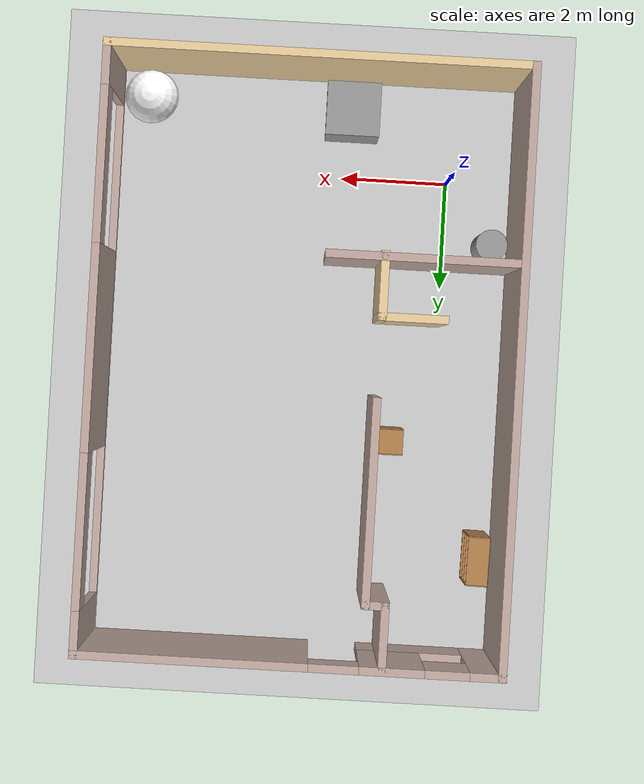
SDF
<sdf version="1.6">
 <world name="default">
  <light name="sun" type="directional">
   <pose>0 0 10 0 -0 0</pose>
   <diffuse>0.8 0.8 0.8 1</diffuse>
   <specular>0.2 0.2 0.2 1</specular>
   <attenuation>
    <range>1000</range>
    <constant>0.9</constant>
    <linear>0.01</linear>
    <quadratic>0.001</quadratic>
   </attenuation>
   <direction>-0.5 0.1 -0.9</direction>
  </light>
  <model name="ground_plane">
   <static>1</static>
   <link name="link">
    <collision name="collision">
     <geometry><plane><normal>0 0 1</normal><size>100 100</size></plane></geometry>
     <surface>
      <contact><collide_bitmask>65535</collide_bitmask></contact>
      <friction><ode><mu>100</mu><mu2>50</mu2></ode></friction>
     </surface>
    </collision>
    <visual name="visual">
     <cast_shadows>0</cast_shadows>
     <geometry><plane><normal>0 0 1</normal><size>100 100</size></plane></geometry>
     <material>
      <script><uri>file://media/materials/scripts/gazebo.material</uri><name>Gazebo/Grey</name></script>
     </material>
    </visual>
   </link>
  </model>
  <gravity>0 0 -9.8</gravity>
  <magnetic_field>6e-06 2.3e-05 -4.2e-05</magnetic_field>
  <atmosphere type="adiabatic"/>
  <physics name="default_physics" default="0" type="ode">
   <max_step_size>0.001</max_step_size>
   <real_time_factor>1</real_time_factor>
   <real_time_update_rate>1000</real_time_update_rate>
  </physics>
  <scene><ambient>0.4 0.4 0.4 1</ambient><background>0.7 0.7 0.7 1</background><shadows>1</shadows></scene>
  <spherical_coordinates>
   <surface_model>EARTH_WGS84</surface_model>
   <latitude_deg>0</latitude_deg>
   <longitude_deg>0</longitude_deg>
   <elevation>0</elevation>
   <heading_deg>0</heading_deg>
  </spherical_coordinates>
  <model name="apt">
   <pose>2.4943 3.50508 0 0 -0 0</pose>
   <link name="Wall_1">
    <pose>0 5.425 0 0 -0 0</pose>
    <visual name="Wall_1_Visual_0">
     <pose>-3.54924 0 1.25 0 -0 0</pose>
     <geometry><box><size>0.65152 0.15 2.5</size></box></geometry>
     <material>
      <script><uri>file://media/materials/scripts/gazebo.material</uri><name>Gazebo/Grey</name></script>
      <ambient>0.760784 0.662745 0.627451 1</ambient>
     </material>
     <meta><layer>0</layer></meta>
    </visual>
    <collision name="Wall_1_Collision_0">
     <geometry><box><size>0.65152 0.15 2.5</size></box></geometry>
     <pose>-3.54924 0 1.25 0 -0 0</pose>
    </collision>
    <visual name="Wall_1_Visual_1">
     <pose>1.76024 0 1.25 0 -0 0</pose>
     <geometry><box><size>4.22952 0.15 2.5</size></box></geometry>
     <material>
      <script><uri>file://media/materials/scripts/gazebo.material</uri><name>Gazebo/Grey</name></script>
      <ambient>0.760784 0.662745 0.627451 1</ambient>
     </material>
     <meta><layer>0</layer></meta>
    </visual>
    <collision name="Wall_1_Collision_1">
     <geometry><box><size>4.22952 0.15 2.5</size></box></geometry>
     <pose>1.76024 0 1.25 0 -0 0</pose>
    </collision>
    <visual name="Wall_1_Visual_2">
     <pose>-2.239 0 0.4 0 -0 0</pose>
     <geometry><box><size>1.96896 0.15 0.8</size></box></geometry>
     <material>
      <script><uri>file://media/materials/scripts/gazebo.material</uri><name>Gazebo/Grey</name></script>
      <ambient>0.760784 0.662745 0.627451 1</ambient>
     </material>
     <meta><layer>0</layer></meta>
    </visual>
    <collision name="Wall_1_Collision_2">
     <geometry><box><size>1.96896 0.15 0.8</size></box></geometry>
     <pose>-2.239 0 0.4 0 -0 0</pose>
    </collision>
    <visual name="Wall_1_Visual_3">
     <pose>-1.839 0 1.65 0 -0 0</pose>
     <geometry><box><size>1.16895 0.15 1.7</size></box></geometry>
     <material>
      <script><uri>file://media/materials/scripts/gazebo.material</uri><name>Gazebo/Grey</name></script>
      <ambient>0.760784 0.662745 0.627451 1</ambient>
     </material>
     <meta><layer>0</layer></meta>
    </visual>
    <collision name="Wall_1_Collision_3">
     <geometry><box><size>1.16895 0.15 1.7</size></box></geometry>
     <pose>-1.839 0 1.65 0 -0 0</pose>
    </collision>
    <visual name="Wall_1_Visual_4">
     <pose>-2.82348 0 2.05 0 -0 0</pose>
     <geometry><box><size>0.8 0.15 0.9</size></box></geometry>
     <material>
      <script><uri>file://media/materials/scripts/gazebo.material</uri><name>Gazebo/Grey</name></script>
      <ambient>0.760784 0.662745 0.627451 1</ambient>
     </material>
     <meta><layer>0</layer></meta>
    </visual>
    <collision name="Wall_1_Collision_4">
     <geometry><box><size>0.8 0.15 0.9</size></box></geometry>
     <pose>-2.82348 0 2.05 0 -0 0</pose>
    </collision>
    <visual name="Wall_1_Visual_5">
     <pose>-0.804525 0 2.25 0 -0 0</pose>
     <geometry><box><size>0.9 0.15 0.5</size></box></geometry>
     <material>
      <script><uri>file://media/materials/scripts/gazebo.material</uri><name>Gazebo/Grey</name></script>
      <ambient>0.760784 0.662745 0.627451 1</ambient>
     </material>
     <meta><layer>0</layer></meta>
    </visual>
    <collision name="Wall_1_Collision_5">
     <geometry><box><size>0.9 0.15 0.5</size></box></geometry>
     <pose>-0.804525 0 2.25 0 -0 0</pose>
    </collision>
   </link>
   <link name="Wall_10">
    <collision name="Wall_10_Collision">
     <geometry><box><size>1.25 0.15 2.5</size></box></geometry>
     <pose>0 0 1.25 0 -0 0</pose>
    </collision>
    <visual name="Wall_10_Visual">
     <pose>0 0 1.25 0 -0 0</pose>
     <geometry><box><size>1.25 0.15 2.5</size></box></geometry>
     <material>
      <script><uri>file://media/materials/scripts/gazebo.material</uri><name>Gazebo/Grey</name></script>
      <ambient>0.760784 0.662745 0.627451 1</ambient>
     </material>
     <meta><layer>0</layer></meta>
    </visual>
    <pose>-1.66105 4.81692 0 0 0 -1.5708</pose>
   </link>
   <link name="Wall_14">
    <collision name="Wall_14_Collision">
     <geometry><box><size>0.5 0.15 2.5</size></box></geometry>
     <pose>0 0 1.25 0 -0 0</pose>
    </collision>
    <visual name="Wall_14_Visual">
     <pose>0 0 1.25 0 -0 0</pose>
     <geometry><box><size>0.5 0.15 2.5</size></box></geometry>
     <material>
      <script><uri>file://media/materials/scripts/gazebo.material</uri><name>Gazebo/Grey</name></script>
      <ambient>0.760784 0.662745 0.627451 1</ambient>
     </material>
     <meta><layer>0</layer></meta>
    </visual>
    <pose>-1.48605 4.26692 0 0 -0 0</pose>
   </link>
   <link name="Wall_15">
    <collision name="Wall_15_Collision">
     <geometry><box><size>3.75 0.15 2.5</size></box></geometry>
     <pose>0 0 1.25 0 -0 0</pose>
    </collision>
    <visual name="Wall_15_Visual">
     <pose>0 0 1.25 0 -0 0</pose>
     <geometry><box><size>3.75 0.15 2.5</size></box></geometry>
     <material>
      <script><uri>file://media/materials/scripts/gazebo.material</uri><name>Gazebo/Grey</name></script>
      <ambient>0.760784 0.662745 0.627451 1</ambient>
     </material>
     <meta><layer>0</layer></meta>
    </visual>
    <pose>-1.31105 2.46692 0 0 0 -1.5708</pose>
   </link>
   <link name="Wall_17">
    <collision name="Wall_17_Collision">
     <geometry><box><size>1.25 0.15 2.5</size></box></geometry>
     <pose>0 0 1.25 0 -0 0</pose>
    </collision>
    <visual name="Wall_17_Visual">
     <pose>0 0 1.25 0 -0 0</pose>
     <geometry><box><size>1.25 0.15 2.5</size></box></geometry>
     <material>
      <script><uri>file://media/materials/scripts/gazebo.material</uri><name>Gazebo/Grey</name></script>
      <ambient>0.921569 0.807843 0.615686 1</ambient>
     </material>
     <meta><layer>0</layer></meta>
    </visual>
    <pose>-1.32456 -1.39414 0 0 -0 1.5708</pose>
   </link>
   <link name="Wall_18">
    <collision name="Wall_18_Collision">
     <geometry><box><size>1.25 0.15 2.5</size></box></geometry>
     <pose>0 0 1.25 0 -0 0</pose>
    </collision>
    <visual name="Wall_18_Visual">
     <pose>0 0 1.25 0 -0 0</pose>
     <geometry><box><size>1.25 0.15 2.5</size></box></geometry>
     <material>
      <script><uri>file://media/materials/scripts/gazebo.material</uri><name>Gazebo/Grey</name></script>
      <ambient>0.921569 0.807843 0.615686 1</ambient>
     </material>
     <meta><layer>0</layer></meta>
    </visual>
    <pose>-1.87456 -0.84414 0 0 -0 3.14159</pose>
   </link>
   <link name="Wall_2">
    <pose>3.8 0 0 0 0 -1.5708</pose>
    <visual name="Wall_2_Visual_0">
     <pose>-5.0781 0 1.25 0 -0 0</pose>
     <geometry><box><size>0.843802 0.15 2.5</size></box></geometry>
     <material>
      <script><uri>file://media/materials/scripts/gazebo.material</uri><name>Gazebo/Grey</name></script>
      <ambient>0.760784 0.662745 0.627451 1</ambient>
     </material>
     <meta><layer>0</layer></meta>
    </visual>
    <collision name="Wall_2_Collision_0">
     <geometry><box><size>0.843802 0.15 2.5</size></box></geometry>
     <pose>-5.0781 0 1.25 0 -0 0</pose>
    </collision>
    <visual name="Wall_2_Visual_1">
     <pose>0.421901 0 0.05 0 -0 0</pose>
     <geometry><box><size>10.1562 0.15 0.1</size></box></geometry>
     <material>
      <script><uri>file://media/materials/scripts/gazebo.material</uri><name>Gazebo/Grey</name></script>
      <ambient>0.760784 0.662745 0.627451 1</ambient>
     </material>
     <meta><layer>0</layer></meta>
    </visual>
    <collision name="Wall_2_Collision_1">
     <geometry><box><size>10.1562 0.15 0.1</size></box></geometry>
     <pose>0.421901 0 0.05 0 -0 0</pose>
    </collision>
    <visual name="Wall_2_Visual_2">
     <pose>0.004121 0 1.3 0 -0 0</pose>
     <geometry><box><size>3.72064 0.15 2.4</size></box></geometry>
     <material>
      <script><uri>file://media/materials/scripts/gazebo.material</uri><name>Gazebo/Grey</name></script>
      <ambient>0.760784 0.662745 0.627451 1</ambient>
     </material>
     <meta><layer>0</layer></meta>
    </visual>
    <collision name="Wall_2_Collision_2">
     <geometry><box><size>3.72064 0.15 2.4</size></box></geometry>
     <pose>0.004121 0 1.3 0 -0 0</pose>
    </collision>
    <visual name="Wall_2_Visual_3">
     <pose>5.08222 0 1.3 0 -0 0</pose>
     <geometry><box><size>0.83556 0.15 2.4</size></box></geometry>
     <material>
      <script><uri>file://media/materials/scripts/gazebo.material</uri><name>Gazebo/Grey</name></script>
      <ambient>0.760784 0.662745 0.627451 1</ambient>
     </material>
     <meta><layer>0</layer></meta>
    </visual>
    <collision name="Wall_2_Collision_3">
     <geometry><box><size>0.83556 0.15 2.4</size></box></geometry>
     <pose>5.08222 0 1.3 0 -0 0</pose>
    </collision>
    <visual name="Wall_2_Visual_4">
     <pose>-3.2562 0 2.2 0 -0 0</pose>
     <geometry><box><size>2.8 0.15 0.6</size></box></geometry>
     <material>
      <script><uri>file://media/materials/scripts/gazebo.material</uri><name>Gazebo/Grey</name></script>
      <ambient>0.760784 0.662745 0.627451 1</ambient>
     </material>
     <meta><layer>0</layer></meta>
    </visual>
    <collision name="Wall_2_Collision_4">
     <geometry><box><size>2.8 0.15 0.6</size></box></geometry>
     <pose>-3.2562 0 2.2 0 -0 0</pose>
    </collision>
    <visual name="Wall_2_Visual_5">
     <pose>3.26444 0 2.2 0 -0 0</pose>
     <geometry><box><size>2.8 0.15 0.6</size></box></geometry>
     <material>
      <script><uri>file://media/materials/scripts/gazebo.material</uri><name>Gazebo/Grey</name></script>
      <ambient>0.760784 0.662745 0.627451 1</ambient>
     </material>
     <meta><layer>0</layer></meta>
    </visual>
    <collision name="Wall_2_Collision_5">
     <geometry><box><size>2.8 0.15 0.6</size></box></geometry>
     <pose>3.26444 0 2.2 0 -0 0</pose>
    </collision>
   </link>
   <link name="Wall_4">
    <collision name="Wall_4_Collision">
     <geometry><box><size>11 0.15 2.5</size></box></geometry>
     <pose>0 0 1.25 0 -0 0</pose>
    </collision>
    <visual name="Wall_4_Visual">
     <pose>0 0 1.25 0 -0 0</pose>
     <geometry><box><size>11 0.15 2.5</size></box></geometry>
     <material>
      <script><uri>file://media/materials/scripts/gazebo.material</uri><name>Gazebo/Grey</name></script>
      <ambient>0.760784 0.662745 0.627451 1</ambient>
     </material>
     <meta><layer>0</layer></meta>
    </visual>
    <pose>-3.8 0 0 0 0 -1.5708</pose>
   </link>
   <link name="Wall_5">
    <collision name="Wall_5_Collision">
     <geometry><box><size>7.75 0.15 2.5</size></box></geometry>
     <pose>0 0 1.25 0 -0 0</pose>
    </collision>
    <visual name="Wall_5_Visual">
     <pose>0 0 1.25 0 -0 0</pose>
     <geometry><box><size>7.75 0.15 2.5</size></box></geometry>
     <material>
      <script><uri>file://media/materials/scripts/gazebo.material</uri><name>Gazebo/Grey</name></script>
      <ambient>0.921569 0.807843 0.615686 1</ambient>
     </material>
     <meta><layer>0</layer></meta>
    </visual>
    <pose>0 -5.425 0 0 -0 0</pose>
   </link>
   <link name="Wall_8">
    <collision name="Wall_8_Collision">
     <geometry><box><size>3.5 0.15 2.5</size></box></geometry>
     <pose>0 0 1.25 0 -0 0</pose>
    </collision>
    <visual name="Wall_8_Visual">
     <pose>0 0 1.25 0 -0 0</pose>
     <geometry><box><size>3.5 0.15 2.5</size></box></geometry>
     <material>
      <script><uri>file://media/materials/scripts/gazebo.material</uri><name>Gazebo/Grey</name></script>
      <ambient>0.760784 0.662745 0.627451 1</ambient>
     </material>
     <meta><layer>0</layer></meta>
    </visual>
    <pose>-2.004 -1.91004 0 0 -0 0</pose>
   </link>
   <static>1</static>
  </model>
  <model name="textured_shapes">
   <link name="sphere">
    <inertial>
     <inertia><ixx>1</ixx><ixy>0</ixy><ixz>0</ixz><iyy>1</iyy><iyz>0</iyz><izz>1</izz></inertia>
     <mass>1</mass>
    </inertial>
    <visual name="visual">
     <geometry><sphere><radius>0.5</radius></sphere></geometry>
     <material>
      <script>
       <uri>model://textured_shapes/materials/scripts</uri>
       <uri>model://textured_shapes/materials/textures</uri>
       <name>TexturedShape/Squares</name>
      </script>
      <shader type="pixel"/>
      <ambient>1 1 1 1</ambient>
      <diffuse>1 1 1 1</diffuse>
      <specular>0 0 0 1</specular>
      <emissive>0 0 0 1</emissive>
     </material>
    </visual>
    <collision name="collision">
     <geometry><sphere><radius>0.5</radius></sphere></geometry>
     <surface>
      <friction>
       <ode><mu>1</mu><mu2>1</mu2><fdir1>0 0 0</fdir1><slip1>0</slip1><slip2>0</slip2></ode>
       <torsional>
        <coefficient>1</coefficient>
        <patch_radius>0</patch_radius>
        <surface_radius>0</surface_radius>
        <use_patch_radius>1</use_patch_radius>
        <ode><slip>0</slip></ode>
       </torsional>
      </friction>
      <bounce><restitution_coefficient>0</restitution_coefficient><threshold>1e+06</threshold></bounce>
      <contact>
       <collide_without_contact>0</collide_without_contact>
       <collide_without_contact_bitmask>1</collide_without_contact_bitmask>
       <collide_bitmask>1</collide_bitmask>
       <ode>
        <soft_cfm>0</soft_cfm>
        <soft_erp>0.2</soft_erp>
        <kp>1e+13</kp>
        <kd>1</kd>
        <max_vel>0.01</max_vel>
        <min_depth>0</min_depth>
       </ode>
       <bullet>
        <split_impulse>1</split_impulse>
        <split_impulse_penetration_threshold>-0.01</split_impulse_penetration_threshold>
        <soft_cfm>0</soft_cfm>
        <soft_erp>0.2</soft_erp>
        <kp>1e+13</kp>
        <kd>1</kd>
       </bullet>
      </contact>
     </surface>
    </collision>
   </link>
   <static>0</static>
   <pose>5.65058 -1.29593 0.5 0 -0 0</pose>
  </model>
  <model name="unit_cylinder">
   <pose>-0.848173 1.1849 0.5 0 -0 0</pose>
   <link name="link">
    <inertial>
     <mass>1</mass>
     <inertia><ixx>0.145833</ixx><ixy>0</ixy><ixz>0</ixz><iyy>0.145833</iyy><iyz>0</iyz><izz>0.125</izz></inertia>
    </inertial>
    <collision name="collision">
     <geometry><cylinder><radius>0.293947</radius><length>1</length></cylinder></geometry>
    </collision>
    <visual name="visual">
     <geometry><cylinder><radius>0.293947</radius><length>1</length></cylinder></geometry>
     <material>
      <script><name>Gazebo/Grey</name><uri>file://media/materials/scripts/gazebo.material</uri></script>
     </material>
    </visual>
   </link>
  </model>
  <model name="cabinet">
   <static>1</static>
   <link name="cabinet_bottom_plate">
    <inertial>
     <pose>0 0 -1 0 -0 0</pose>
     <inertia><ixx>2.05</ixx><ixy>0</ixy><ixz>0</ixz><iyy>2.05</iyy><iyz>0</iyz><izz>2.05</izz></inertia>
     <mass>25</mass>
    </inertial>
    <collision name="cabinet_bottom_plate_geom">
     <pose>0 0 0.01 0 -0 0</pose>
     <geometry><box><size>0.45 0.45 0.02</size></box></geometry>
    </collision>
    <visual name="cabinet_bottom_plate_geom_visual">
     <pose>0 0 0.01 0 -0 0</pose>
     <geometry><box><size>0.45 0.45 0.02</size></box></geometry>
     <material>
      <script><uri>file://media/materials/scripts/gazebo.material</uri><name>Gazebo/Wood</name></script>
     </material>
    </visual>
    <collision name="cabinet_bottom_plate_geom_cabinet_back_plate">
     <pose>0.235 0 0.51 0 -0 0</pose>
     <geometry><box><size>0.02 0.45 1.02</size></box></geometry>
    </collision>
    <visual name="cabinet_bottom_plate_geom_cabinet_back_plate_visual">
     <pose>0.235 0 0.51 0 -0 0</pose>
     <geometry><box><size>0.02 0.45 1.02</size></box></geometry>
     <material>
      <script><uri>file://media/materials/scripts/gazebo.material</uri><name>Gazebo/Wood</name></script>
     </material>
    </visual>
    <collision name="cabinet_bottom_plate_geom_cabinet_left_plate">
     <pose>0 0.235 0.51 0 -0 0</pose>
     <geometry><box><size>0.45 0.02 1.02</size></box></geometry>
    </collision>
    <visual name="cabinet_bottom_plate_geom_cabinet_left_plate_visual">
     <pose>0 0.235 0.51 0 -0 0</pose>
     <geometry><box><size>0.45 0.02 1.02</size></box></geometry>
     <material>
      <script><uri>file://media/materials/scripts/gazebo.material</uri><name>Gazebo/Wood</name></script>
     </material>
    </visual>
    <collision name="cabinet_bottom_plate_geom_cabinet_middle_plate">
     <pose>0 0 0.51 0 -0 0</pose>
     <geometry><box><size>0.45 0.45 0.02</size></box></geometry>
    </collision>
    <visual name="cabinet_bottom_plate_geom_cabinet_middle_plate_visual">
     <pose>0 0 0.51 0 -0 0</pose>
     <geometry><box><size>0.45 0.45 0.02</size></box></geometry>
     <material>
      <script><uri>file://media/materials/scripts/gazebo.material</uri><name>Gazebo/Wood</name></script>
     </material>
    </visual>
    <collision name="cabinet_bottom_plate_geom_cabinet_right_plate">
     <pose>0 -0.235 0.51 0 -0 0</pose>
     <geometry><box><size>0.45 0.02 1.02</size></box></geometry>
    </collision>
    <visual name="cabinet_bottom_plate_geom_cabinet_right_plate_visual">
     <pose>0 -0.235 0.51 0 -0 0</pose>
     <geometry><box><size>0.45 0.02 1.02</size></box></geometry>
     <material>
      <script><uri>file://media/materials/scripts/gazebo.material</uri><name>Gazebo/Wood</name></script>
     </material>
    </visual>
    <collision name="cabinet_bottom_plate_geom_cabinet_top_plate">
     <pose>0 0 1.01 0 -0 0</pose>
     <geometry><box><size>0.45 0.45 0.02</size></box></geometry>
    </collision>
    <visual name="cabinet_bottom_plate_geom_cabinet_top_plate_visual">
     <pose>0 0 1.01 0 -0 0</pose>
     <geometry><box><size>0.45 0.45 0.02</size></box></geometry>
     <material>
      <script><uri>file://media/materials/scripts/gazebo.material</uri><name>Gazebo/Wood</name></script>
     </material>
    </visual>
   </link>
   <pose>0.815664 4.9324 0 0 -0 0</pose>
  </model>
  <model name="bookshelf">
   <static>1</static>
   <link name="link">
    <inertial><mass>1</mass></inertial>
    <collision name="back">
     <pose>0 0.005 0.6 0 -0 0</pose>
     <geometry><box><size>0.9 0.01 1.2</size></box></geometry>
    </collision>
    <visual name="visual1">
     <pose>0 0.005 0.6 0 -0 0</pose>
     <geometry><box><size>0.9 0.01 1.2</size></box></geometry>
     <material>
      <script><uri>file://media/materials/scripts/gazebo.material</uri><name>Gazebo/Wood</name></script>
     </material>
    </visual>
    <collision name="left_side">
     <pose>0.45 -0.195 0.6 0 -0 0</pose>
     <geometry><box><size>0.02 0.4 1.2</size></box></geometry>
    </collision>
    <visual name="visual2">
     <pose>0.45 -0.195 0.6 0 -0 0</pose>
     <geometry><box><size>0.02 0.4 1.2</size></box></geometry>
     <material>
      <script><uri>file://media/materials/scripts/gazebo.material</uri><name>Gazebo/Wood</name></script>
     </material>
    </visual>
    <collision name="right_side">
     <pose>-0.45 -0.195 0.6 0 -0 0</pose>
     <geometry><box><size>0.02 0.4 1.2</size></box></geometry>
    </collision>
    <visual name="visual3">
     <pose>-0.45 -0.195 0.6 0 -0 0</pose>
     <geometry><box><size>0.02 0.4 1.2</size></box></geometry>
     <material>
      <script><uri>file://media/materials/scripts/gazebo.material</uri><name>Gazebo/Wood</name></script>
     </material>
    </visual>
    <collision name="bottom">
     <pose>0 -0.195 0.03 0 -0 0</pose>
     <geometry><box><size>0.88 0.4 0.06</size></box></geometry>
    </collision>
    <visual name="visual4">
     <pose>0 -0.195 0.03 0 -0 0</pose>
     <geometry><box><size>0.88 0.4 0.06</size></box></geometry>
     <material>
      <script><uri>file://media/materials/scripts/gazebo.material</uri><name>Gazebo/Wood</name></script>
     </material>
    </visual>
    <collision name="top">
     <pose>0 -0.195 1.19 0 -0 0</pose>
     <geometry><box><size>0.88 0.4 0.02</size></box></geometry>
    </collision>
    <visual name="visual5">
     <pose>0 -0.195 1.19 0 -0 0</pose>
     <geometry><box><size>0.88 0.4 0.02</size></box></geometry>
     <material>
      <script><uri>file://media/materials/scripts/gazebo.material</uri><name>Gazebo/Wood</name></script>
     </material>
    </visual>
    <collision name="low_shelf">
     <pose>0 -0.195 0.43 0 -0 0</pose>
     <geometry><box><size>0.88 0.4 0.02</size></box></geometry>
    </collision>
    <visual name="visual6">
     <pose>0 -0.195 0.43 0 -0 0</pose>
     <geometry><box><size>0.88 0.4 0.02</size></box></geometry>
     <material>
      <script><uri>file://media/materials/scripts/gazebo.material</uri><name>Gazebo/Wood</name></script>
     </material>
    </visual>
    <collision name="high_shelf">
     <pose>0 -0.195 0.8 0 -0 0</pose>
     <geometry><box><size>0.88 0.4 0.02</size></box></geometry>
    </collision>
    <visual name="visual7">
     <pose>0 -0.195 0.8 0 -0 0</pose>
     <geometry><box><size>0.88 0.4 0.02</size></box></geometry>
     <material>
      <script><uri>file://media/materials/scripts/gazebo.material</uri><name>Gazebo/Wood</name></script>
     </material>
    </visual>
   </link>
   <pose>-1.09594 7.04479 0 0 -0 1.55361</pose>
  </model>
  <model name="unit_box">
   <pose>1.85249 -1.20942 0.5 0 -0 0</pose>
   <link name="link">
    <inertial>
     <mass>1</mass>
     <inertia>
      <ixx>0.166667</ixx>
      <ixy>0</ixy>
      <ixz>0</ixz>
      <iyy>0.166667</iyy>
      <iyz>0</iyz>
      <izz>0.166667</izz>
     </inertia>
    </inertial>
    <collision name="collision"><geometry><box><size>1 1 1</size></box></geometry></collision>
    <visual name="visual">
     <geometry><box><size>1 1 1</size></box></geometry>
     <material>
      <script><name>Gazebo/Grey</name><uri>file://media/materials/scripts/gazebo.material</uri></script>
     </material>
    </visual>
   </link>
  </model>
 </world>
</sdf>
